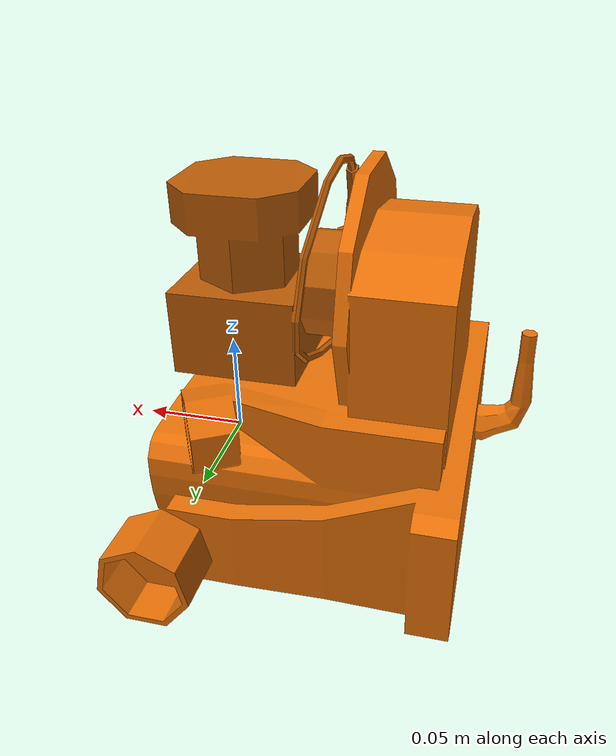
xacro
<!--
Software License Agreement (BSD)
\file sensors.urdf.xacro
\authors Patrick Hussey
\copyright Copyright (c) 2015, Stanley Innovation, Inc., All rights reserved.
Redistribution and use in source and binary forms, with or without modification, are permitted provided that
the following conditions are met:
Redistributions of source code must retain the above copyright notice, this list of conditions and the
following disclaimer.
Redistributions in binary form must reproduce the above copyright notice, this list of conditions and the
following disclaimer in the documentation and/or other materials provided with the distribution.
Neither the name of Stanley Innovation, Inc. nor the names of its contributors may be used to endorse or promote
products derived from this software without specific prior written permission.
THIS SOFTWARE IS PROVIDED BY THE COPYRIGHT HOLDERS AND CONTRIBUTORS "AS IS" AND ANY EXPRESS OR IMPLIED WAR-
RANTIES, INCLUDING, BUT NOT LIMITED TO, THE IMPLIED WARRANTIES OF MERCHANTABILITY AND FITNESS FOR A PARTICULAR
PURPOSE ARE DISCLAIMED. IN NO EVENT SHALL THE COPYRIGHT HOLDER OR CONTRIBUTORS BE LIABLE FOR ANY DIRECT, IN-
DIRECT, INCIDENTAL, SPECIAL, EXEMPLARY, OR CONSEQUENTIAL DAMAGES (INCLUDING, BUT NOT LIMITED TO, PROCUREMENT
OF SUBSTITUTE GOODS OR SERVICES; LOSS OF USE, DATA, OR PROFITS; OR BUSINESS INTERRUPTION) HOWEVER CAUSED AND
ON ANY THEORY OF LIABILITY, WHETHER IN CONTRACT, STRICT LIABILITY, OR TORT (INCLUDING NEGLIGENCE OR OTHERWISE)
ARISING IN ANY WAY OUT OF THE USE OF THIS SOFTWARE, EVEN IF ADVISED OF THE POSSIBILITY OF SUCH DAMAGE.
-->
<?xml version="1.0"?>
<robot name="segway_sensors" xmlns:xacro="http://ros.org/wiki/xacro">
    <xacro:include filename="$(find jr_description)/urdf/sensors/asus_sensor.urdf.xacro"/>
    <xacro:include filename="$(find jr_description)/urdf/sensors/sick_lms1xx.urdf.xacro"/>
    <!-- xacro:include filename="$(find jr_description)/urdf/sensors/pgr_flea3.urdf.xacro"/ -->

    <xacro:include filename="$(find jr_description)/urdf/sensors/multisense_sl_cpu.urdf" />

    <!-- xacro:include filename="$(find multisense_sl_description)/urdf/multisense_sl_cpu.urdf" / -->
    <!-- xacro:include filename="$(find multisense_description)/urdf/multisenseSL.urdf" / -->

    <!-- xacro:include filename="$(find jr_description)/urdf/sensors/hokuyo_ust20lx.urdf.xacro"/ -->
    <!-- xacro:include filename="$(find jr_description)/urdf/sensors/velodyne_vlp16.urdf.xacro"/ -->

    <property name="M_PI" value="3.14159"/>

    <property name="HAS_EXT_IMU" value="false"/>
    <property name="HAS_GPS" value="true"/>
    <property name="HAS_DEPTH_CAMERA_HEAD" value="true"/>
    <property name="HAS_FRONT_2D_LASER" value="true"/>
    <property name="HAS_EXT_IMU" value="false"/>

    <xacro:macro name="segway_sensors">
        <!-- CH Robotics UM7 Link-->
        <xacro:if value="${HAS_EXT_IMU}">
            <link name="ext_imu_frame"/>
            <joint name="ext_imu_joint" type="fixed">
                <origin xyz="0 0 0.30635" rpy="0 0 0" />
                <parent link="base_chassis_link" />
                <child link="ext_imu_frame" />
            </joint>
            <gazebo>
                <plugin name="imu_controller" filename="libhector_gazebo_ros_imu.so">
                    <alwaysOn>1</alwaysOn>
                    <updateRate>50.0</updateRate>
                    <bodyName>ext_imu_frame</bodyName>
                    <topicName>/segway/feedback/ext_imu</topicName>
                    <accelDrift>0.005 0.005 0.005</accelDrift>
                    <accelGaussianNoise>0.005 0.005 0.005</accelGaussianNoise>
                    <rateDrift>0.005 0.005 0.005 </rateDrift>
                    <rateGaussianNoise>0.005 0.005 0.005 </rateGaussianNoise>
                    <headingDrift>0.005</headingDrift>
                    <headingGaussianNoise>0.005</headingGaussianNoise>
                </plugin>
            </gazebo>
        </xacro:if>

        <!--GPS Link-->
        <xacro:if value="${HAS_GPS}">
            <link name="gps_frame"/>
            <joint name="gps_joint" type="fixed">
                <origin xyz="-0.1189 0 0.34665" rpy="0 0 0" />
                <parent link="base_chassis_link" />
                <child link="gps_frame" />
            </joint>
            <gazebo>
                <plugin name="gps_controller" filename="libhector_gazebo_ros_gps.so">
                    <alwaysOn>1</alwaysOn>
                    <updateRate>40</updateRate>
                    <bodyName>gps_frame</bodyName>
                    <topicName>/segway/feedback/gps/fix_2d</topicName>
                    <velocityTopicName>/segway/feedback/gps/vel</velocityTopicName>
                    <referenceLatitude>40.712784</referenceLatitude>
                    <referenceLongitude>-74.005941</referenceLongitude>
                    <referenceHeading>0</referenceHeading>
                    <referenceAltitude>0</referenceAltitude>
                    <drift>0.0001 0.0001 0.0001</drift>
                </plugin>
            </gazebo>
        </xacro:if>

        <!-- Asus Head Camera -->
        <xacro:if value="${HAS_DEPTH_CAMERA_HEAD}">
            <xacro:asus_sensor rgbd_prefix="asus_head" parent="head_root">
                <origin xyz="-0.1 0 0.2" rpy="0 -0.35 0" />
            </xacro:asus_sensor>
        </xacro:if>

        <!-- Base Laser Scanner -->
        <xacro:if value="${HAS_FRONT_2D_LASER}">
            <!-- SICK LMS1xx Sensor -->
            <xacro:sick_lms1xx laser_prefix="base" parent="base_chassis_link">
                <origin xyz="0.29345 0 0.2" rpy="0 0 0" />
            </xacro:sick_lms1xx>
        </xacro:if>

        <!-- Second laser Sensor -->
        <xacro:if value="$(optenv SEGWAY_HAS_SECOND_2D_LASER false)">
            <!-- SICK TIM Sensor -->
            <xacro:if value="$(optenv SEGWAY_LASER2_IS_SICK_TIM false)">
                <xacro:sick_tim laser_prefix="$(optenv LASER2_PREFIX base)" parent="$(optenv SEGWAY_PARENT_LINK base_chassis_link)">
                    <origin xyz="$(optenv LASER2_XYZ 0.35 0 0.2)" rpy="$(optenv LASER2_RPY 3.14159 0 0)" />
                </xacro:sick_tim>
            </xacro:if>

            <xacro:if value="$(optenv SEGWAY_LASER2_IS_HOKUYO false)">
                <xacro:hokuyo_ust20lx laser_prefix="$(optenv LASER2_PREFIX base)" parent="$(optenv VECTOR_PARENT_LINK base_chassis_link)">
                    <origin xyz="$(optenv LASER2_XYZ 0.35 0 0.2)" rpy="$(optenv LASER2_RPY 3.14159 0 0)" />
                </xacro:hokuyo_ust20lx>
            </xacro:if>
        </xacro:if>

        <!-- PGR FLEA3 Sensor -->
        <xacro:if value="$(optenv SEGWAY_HAS_FLEA3 false)">
            <xacro:pgr_flea3 camera_prefix="camera" parent="$(optenv SEGWAY_PARENT_LINK base_chassis_link)"
                          image_format="R8G8B8" image_topic_name="image_raw"
                          camera_info_topic_name="camera_info" hfov="90" focal_length="317.772992"
                          hack_baseline="0" image_width="640" image_height="480">
                <origin xyz="$(optenv FLEA3_XYZ 0 0 0.32739)" rpy="$(optenv FLEA3_RPY 0 0 0)" />
            </xacro:pgr_flea3>
        </xacro:if>

    </xacro:macro>
</robot>

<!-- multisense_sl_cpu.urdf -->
<robot name="multisense_sl">

  <!-- Head Link Simple Collision Meshes -->
  <link name="head">
    <inertial>
      <origin xyz="-0.075493 3.3383E-05 0.02774" rpy="0 0 0" />
      <mass value="1.41984" />
      <inertia iyy="0.002080106" ixy="-1.5797E-06" iyz="-6.8415E-07" ixx="0.0036053766" ixz="-0.00089293" izz="0.001782985" />
    </inertial>
    <visual>
      <origin xyz="0 0 0" rpy="0 0 0" />
      <geometry>
        <mesh filename="package://multisense_sl_description/meshes/head.dae" />
      </geometry>
      <material name="">
        <color rgba="0.9098 0.44314 0.031373 1" />
      </material>
    </visual>
  <collision>
    <origin xyz="-0.0503 0 -0.00195" rpy="0 0 0" />
    <geometry>
      <box size="0.1311 0.12 0.0591"/>
    </geometry>
  </collision>
  </link>

  <link name="hokuyo_link">
    <inertial>
      <origin xyz="0.012428 0.0004084 -0.0041835" rpy="0 0 0" />
      <mass value="0.057654" />
      <!-- distribute iyy and izz equally between head and hokuyo_link given it's constrainted anyways -->
      <!-- tweak ixx of hokuyo so it's larger, 1/10th of head ixx. -->
      <inertia iyy="0.002080106" ixy="4.9927E-08" iyz="-9.8165E-09" ixx="0.0004005974" ixz="1.1015E-05" izz="0.001782985" />
    </inertial>
    <visual>
      <!--origin xyz="0.065774 -0.001163 -0.08809" rpy="0 0 0" /-->
      <!--origin xyz="0.045 -0.001163 -0.08809" rpy="-0.314 0 0" /-->
      <origin xyz="0.045 -0.0261018277 -0.08342369" rpy="-0.314 0 0" />
      <geometry>
        <mesh filename="package://multisense_sl_description/meshes/head_camera.dae" />
      </geometry>
      <material name="">
        <color rgba="0.72941 0.35686 0.023529 1" />
      </material>
    </visual>
  <collision>
    <origin xyz="0.01885 0 -0.02119" rpy="0 0 0" />
    <geometry>
      <box size="0.08 0.06 0.04238"/>
    </geometry>
  </collision>
  </link>

  <!-- Head Link Complex Collision Meshes -->

  <joint name="hokuyo_joint" type="continuous">
    <origin xyz="-0.0446 0 0.0880" rpy="0 0 0" />
    <parent link="head" />
    <child link="hokuyo_link" />
    <axis xyz="1 0 0" />
    <dynamics damping="0.01" friction="0"/>
  </joint>

  <!-- Hokuyo Laser -->
  <joint name="head_hokuyo_joint" type="fixed">
    <axis xyz="0 1 0" />
    <origin xyz="0.03 0 0.015" rpy="0 0 0"/>
    <parent link="hokuyo_link"/>
    <child link="head_hokuyo_frame"/>
  </joint>

  <link name="head_hokuyo_frame">
    <inertial>
      <mass value="1e-5" />
      <!-- collocate with parent link and remove mass from it -->
      <origin xyz="0.042428 0.0004084 0.0108165" rpy="0 0 0"/>
      <inertia ixx="1e-6" ixy="0" ixz="0" iyy="1e-6" iyz="0" izz="1e-6" />
    </inertial>
    <visual>
      <origin xyz="0 0 0" rpy="0 0 0 " />
      <geometry>
        <box size="0.01 0.01 0.01"/>
      </geometry>
    </visual>
  </link>

  <gazebo reference="head_hokuyo_frame">
    <sensor type="ray" name="head_hokuyo_sensor">
      <pose>0 0 0 0 0 0</pose>
      <visualize>false</visualize>
      <update_rate>40</update_rate>
      <ray>
        <scan>
          <horizontal>
            <samples>720</samples>
            <resolution>1</resolution>
            <min_angle>-1.570796</min_angle>
            <max_angle>1.570796</max_angle>
          </horizontal>
        </scan>
        <range>
          <min>0.10</min>
          <max>30.0</max>
          <resolution>0.01</resolution>
        </range>
        <noise>
          <type>gaussian</type>
          <mean>0.0</mean>
          <stddev>0.01</stddev>
        </noise>
      </ray>
      <plugin name="gazebo_ros_head_hokuyo_controller" filename="libgazebo_ros_laser.so">
        <topicName>/multisense_sl/laser/scan</topicName>
        <frameName>/segway/head_hokuyo_frame</frameName>
      </plugin>
    </sensor>
  </gazebo>

  <!-- Stereo Camera -->
  <joint name="left_camera_frame_joint" type="fixed">
    <!-- optical frame collocated with tilting DOF -->
    <origin xyz="0.0 0.035 -0.002"/>
    <parent link="head"/>
    <child link="left_camera_frame"/>
  </joint>

  <link name="left_camera_frame">
    <inertial>
      <mass value="1e-5" />
      <!-- collocate with parent link and remove mass from it -->
      <origin xyz="-0.075493 0.035033383 0.02574"/>
      <inertia ixx="1e-6" ixy="0" ixz="0" iyy="1e-6" iyz="0" izz="1e-6" />
    </inertial>
  </link>

  <joint name="left_camera_optical_frame_joint" type="fixed">
    <origin xyz="0 0 0" rpy="-1.5708 0.0 -1.5708" />
    <parent link="left_camera_frame" />
    <child link="left_camera_optical_frame"/>
  </joint>

  <link name="left_camera_optical_frame"/>
  <gazebo reference="left_camera_frame">
    <sensor type="multicamera" name="stereo_camera">
      <!-- see MultiSenseSLPlugin.h for available modes -->
      <update_rate>30.0</update_rate>
      <camera name="left">
        <!-- Spec sheet says 80deg X 45deg @ 1024x544pix.  Based on feedback
             from teams, we're instead doing 80deg X 80deg @ 800x800pix. -->
        <horizontal_fov>1.3962634</horizontal_fov>
        <image>
          <width>800</width>
          <height>800</height>
          <format>R8G8B8</format>
        </image>
        <clip>
          <near>0.02</near>
          <far>300</far>
        </clip>
        <noise>
          <type>gaussian</type>
          <mean>0.0</mean>
          <stddev>0.007</stddev>
        </noise>
      </camera>
      <camera name="right">
        <pose>0 -0.07 0 0 0 0</pose>
        <!-- Spec sheet says 80deg X 45deg @ 1024x544pix.  Based on feedback
             from teams, we're instead doing 80deg X 80deg @ 800x800pix. -->
        <horizontal_fov>1.3962634</horizontal_fov>
        <image>
          <width>800</width>
          <height>800</height>
          <format>R8G8B8</format>
        </image>
        <clip>
          <near>0.02</near>
          <far>300</far>
        </clip>
        <noise>
          <type>gaussian</type>
          <mean>0.0</mean>
          <stddev>0.007</stddev>
        </noise>
      </camera>
      <plugin name="stereo_camera_controller" filename="libgazebo_ros_multicamera.so">
        <alwaysOn>true</alwaysOn>
        <updateRate>0.0</updateRate>
        <cameraName>multisense_sl/camera</cameraName>
        <imageTopicName>image_raw</imageTopicName>
        <cameraInfoTopicName>camera_info</cameraInfoTopicName>
        <frameName>left_camera_optical_frame</frameName>
        <hackBaseline>0.07</hackBaseline>
        <distortionK1>0.0</distortionK1>
        <distortionK2>0.0</distortionK2>
        <distortionK3>0.0</distortionK3>
        <distortionT1>0.0</distortionT1>
        <distortionT2>0.0</distortionT2>
      </plugin>
    </sensor>
  </gazebo>

  <joint name="right_camera_frame_joint" type="fixed">
    <origin xyz="0.0 -0.035 -0.002"/>
    <parent link="head"/>
    <child link="right_camera_frame"/>
  </joint>
  <link name="right_camera_frame">
    <inertial>
      <mass value="1e-5" />
      <!-- collocate with parent link and remove mass from it -->
      <origin xyz="-0.075493 -0.034966617 0.02574"/>
      <inertia ixx="1e-6" ixy="0" ixz="0" iyy="1e-6" iyz="0" izz="1e-6" />
    </inertial>
  </link>
  <joint name="right_camera_optical_frame_joint" type="fixed">
    <origin xyz="0 0 0" rpy="-1.5708 0.0 -1.5708" />
    <parent link="right_camera_frame" />
    <child link="right_camera_optical_frame"/>
  </joint>
  <link name="right_camera_optical_frame"/>

  <joint name="center_top_led_frame_joint" type="fixed">
    <origin xyz="0.01125 0.0 0.0105"/>
    <parent link="head"/>
    <child link="center_top_led_frame"/>
  </joint>
  <link name="center_top_led_frame">
    <inertial>
      <mass value="1e-5" />
      <!-- collocate with parent link and remove mass from it -->
      <origin xyz="-0.064243 0.000033383 0.03824" rpy="0 0 0" />
      <inertia ixx="1e-6" ixy="0" ixz="0" iyy="1e-6" iyz="0" izz="1e-6" />
    </inertial>
  </link>
  <joint name="center_bottom_led_frame_joint" type="fixed">
    <origin xyz="0.01125 0.0 -0.0155"/>
    <parent link="head"/>
    <child link="center_bottom_led_frame"/>
  </joint>
  <link name="center_bottom_led_frame">
    <inertial>
      <mass value="1e-5" />
      <!-- collocate with parent link and remove mass from it -->
      <origin xyz="-0.064243 0.000033383 0.01224" rpy="0 0 0" />
      <inertia ixx="1e-6" ixy="0" ixz="0" iyy="1e-6" iyz="0" izz="1e-6" />
    </inertial>
  </link>
  <joint name="left_led_frame_joint" type="fixed">
    <origin xyz="-0.01443 0.07452 0.050346" rpy="0 -0.15 0.53"/>
    <parent link="head"/>
    <child link="left_led_frame"/>
  </joint>
  <link name="left_led_frame">
    <inertial>
      <mass value="1e-5" />
      <!-- collocate with parent link and remove mass from it -->
      <origin xyz="-0.089923 0.074553383 0.078086" rpy="0 -0.15 0.53" />
      <inertia ixx="1e-6" ixy="0" ixz="0" iyy="1e-6" iyz="0" izz="1e-6" />
    </inertial>
  </link>
  <joint name="right_led_frame_joint" type="fixed">
    <origin xyz="-0.01443 -0.07452 0.050346" rpy="0 -0.15 -0.53"/>
    <parent link="head"/>
    <child link="right_led_frame"/>
  </joint>
  <link name="right_led_frame">
    <inertial>
      <mass value="1e-5" />
      <!-- collocate with parent link and remove mass from it -->
      <origin xyz="-0.089923 -0.074486617 0.07908" rpy="0 -0.15 -0.53" />
      <inertia ixx="1e-6" ixy="0" ixz="0" iyy="1e-6" iyz="0" izz="1e-6" />
    </inertial>
  </link>

  <!-- imu link -->
  <link name="head_imu_link">
    <inertial>
      <mass value="1e-5" />
      <!-- collocate with parent link and remove mass from it -->
      <origin xyz="-0.122993 0.035033383 0.02774" rpy="0 0 0" />
      <inertia ixx="1e-6" ixy="0" ixz="0" iyy="1e-6" iyz="0" izz="1e-6" />
    </inertial>
    <visual>
      <origin rpy="0 0 0" xyz="0 0 0"/>
      <geometry>
        <box size="0.01 0.01 0.01"/>
      </geometry>
    </visual>
  </link>
  <joint name="head_imu_joint" type="fixed">
    <parent link="head"/>
    <child link="head_imu_link"/>
    <!-- putting it at the same z-level as the stereo -->
    <origin xyz="-0.0475 0.035 0.0" rpy="0 0 0"/>
  </joint>
  <gazebo reference="head_imu_link">
    <!-- this is expected to be reparented to head with appropriate offset
         when head_imu_link is reduced by fixed joint reduction -->
    <!-- todo: this is working with gazebo 1.4, need to write a unit test -->
    <sensor name="head_imu_sensor" type="imu">
      <always_on>1</always_on>
      <update_rate>1000.0</update_rate>
      <imu>
        <noise>
          <type>gaussian</type>
          <rate>
            <mean>0.0</mean>
            <stddev>2e-4</stddev>
            <bias_mean>0.0000075</bias_mean>
            <bias_stddev>0.0000008</bias_stddev>
          </rate>
          <accel>
            <mean>0.0</mean>
            <stddev>1.7e-2</stddev>
            <bias_mean>0.1</bias_mean>
            <bias_stddev>0.001</bias_stddev>
          </accel>
        </noise>
      </imu>
    </sensor>
  </gazebo>

  <gazebo>
    <plugin filename="libMultiSenseSLPlugin.so" name="multisense_plugin"/>
  </gazebo>

</robot>
